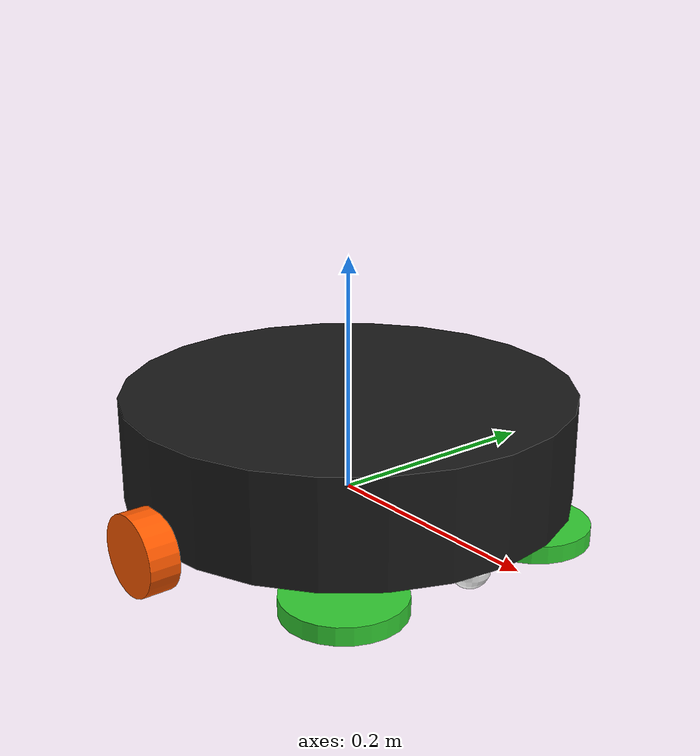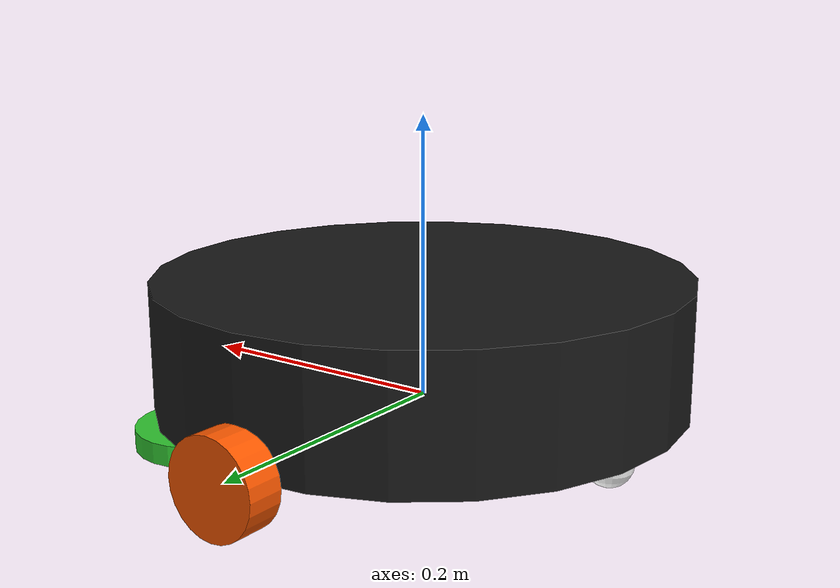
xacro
<?xml version="1.0"?>
<robot xmlns:xacro="http://www.ros.org/wiki/xacro">

  <!-- ============ MUST MATCH robot.yaml ============ -->
  <xacro:property name="wheel_radius"     value="0.0336"/>   <!-- 67.2 mm dia -->
  <xacro:property name="wheel_separation" value="0.400"/>    <!-- centre-to-centre -->
  <xacro:property name="body_radius"      value="0.190"/>    <!-- the chassis disc -->

  <xacro:property name="body_height"      value="0.090"/>
  <xacro:property name="body_mass"        value="5.400"/>   <!-- 6 kg total - wheels/casters -->
  <xacro:property name="wheel_thickness"  value="0.026"/>
  <xacro:property name="wheel_mass"       value="0.250"/>
  <xacro:property name="wheel_offset_y"   value="${wheel_separation/2}"/>
  <xacro:property name="caster_radius"    value="0.0168"/>  <!-- HALF wheel_radius -->
  <xacro:property name="caster_offset_x"  value="0.150"/>

  <material name="black"><color rgba="0.1 0.1 0.1 1"/></material>
  <material name="orange"><color rgba="1 0.35 0 1"/></material>
  <material name="white"><color rgba="1 1 1 1"/></material>
  <material name="cyan"><color rgba="0 0.8 0.9 1"/></material>
  <material name="green"><color rgba="0.2 0.8 0.2 1"/></material>

  <link name="base_link"/>

  <!-- base_link is at the wheel AXLE, so the floor is wheel_radius BELOW it. -->
  <joint name="base_footprint_joint" type="fixed">
    <parent link="base_link"/>
    <child  link="base_footprint"/>
    <origin xyz="0 0 ${-wheel_radius}" rpy="0 0 0"/>
  </joint>
  <link name="base_footprint"/>

  <joint name="body_joint" type="fixed">
    <parent link="base_link"/>
    <child  link="body"/>
    <!-- The 90 mm body disc sits ABOVE the little wheels, not centred on the
         axle. Its centre is half its height above base_link. -->
    <origin xyz="0 0 ${body_height/2}" rpy="0 0 0"/>
  </joint>
  <link name="body">
    <visual>
      <geometry><cylinder radius="${body_radius}" length="${body_height}"/></geometry>
      <material name="black"/>
    </visual>
    <collision>
      <geometry><cylinder radius="${body_radius}" length="${body_height}"/></geometry>
    </collision>
    <xacro:inertial_cylinder mass="${body_mass}" radius="${body_radius}" length="${body_height}">
      <origin xyz="0 0 0" rpy="0 0 0"/>
    </xacro:inertial_cylinder>
  </link>

  <joint name="left_wheel_joint" type="continuous">
    <parent link="base_link"/>
    <child  link="left_wheel"/>
    <origin xyz="0 ${wheel_offset_y} 0" rpy="${-pi/2} 0 0"/>
    <axis   xyz="0 0 1"/>
  </joint>
  <link name="left_wheel">
    <visual>
      <geometry><cylinder radius="${wheel_radius}" length="${wheel_thickness}"/></geometry>
      <material name="orange"/>
    </visual>
    <collision><geometry><sphere radius="${wheel_radius}"/></geometry></collision>
    <xacro:inertial_cylinder mass="${wheel_mass}" radius="${wheel_radius}" length="${wheel_thickness}">
      <origin xyz="0 0 0" rpy="0 0 0"/>
    </xacro:inertial_cylinder>
  </link>

  <joint name="right_wheel_joint" type="continuous">
    <parent link="base_link"/>
    <child  link="right_wheel"/>
    <origin xyz="0 ${-wheel_offset_y} 0" rpy="${pi/2} 0 0"/>
    <axis   xyz="0 0 -1"/>
  </joint>
  <link name="right_wheel">
    <visual>
      <geometry><cylinder radius="${wheel_radius}" length="${wheel_thickness}"/></geometry>
      <material name="orange"/>
    </visual>
    <collision><geometry><sphere radius="${wheel_radius}"/></geometry></collision>
    <xacro:inertial_cylinder mass="${wheel_mass}" radius="${wheel_radius}" length="${wheel_thickness}">
      <origin xyz="0 0 0" rpy="0 0 0"/>
    </xacro:inertial_cylinder>
  </link>

  <!-- Casters are HALF the wheel radius, so their centres sit at
       (-wheel_radius + caster_radius) and their bottoms touch the floor. -->
  <xacro:macro name="caster" params="name x">
    <joint name="${name}_joint" type="fixed">
      <parent link="base_link"/>
      <child  link="${name}"/>
      <origin xyz="${x} 0 ${-wheel_radius + caster_radius}"/>
    </joint>
    <link name="${name}">
      <visual><geometry><sphere radius="${caster_radius}"/></geometry><material name="white"/></visual>
      <collision><geometry><sphere radius="${caster_radius}"/></geometry></collision>
      <xacro:inertial_sphere mass="0.03" radius="${caster_radius}">
        <origin xyz="0 0 0" rpy="0 0 0"/>
      </xacro:inertial_sphere>
    </link>
  </xacro:macro>

  <xacro:caster name="caster_front" x="${caster_offset_x}"/>
  <xacro:caster name="caster_rear"  x="${-caster_offset_x}"/>

  <xacro:property name="brush_radius"     value="0.050"/>
  <xacro:property name="brush_separation" value="0.200"/>
  <xacro:property name="brush_offset_x"   value="0.120"/>

  <xacro:macro name="brush" params="name y">
    <joint name="${name}_joint" type="fixed">
      <parent link="base_link"/>
      <child  link="${name}"/>
      <origin xyz="${brush_offset_x} ${y} ${-wheel_radius + 0.008}"/>
    </joint>
    <link name="${name}">
      <visual>
        <geometry><cylinder radius="${brush_radius}" length="0.015"/></geometry>
        <material name="green"/>
      </visual>
    </link>
  </xacro:macro>

  <xacro:brush name="brush_left"  y="${ brush_separation/2}"/>
  <xacro:brush name="brush_right" y="${-brush_separation/2}"/>

</robot>
